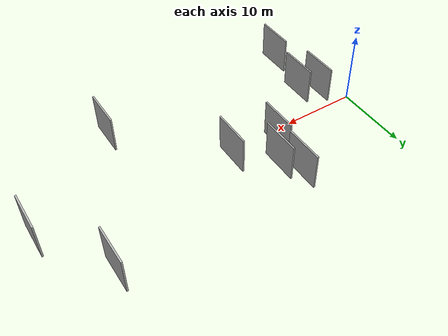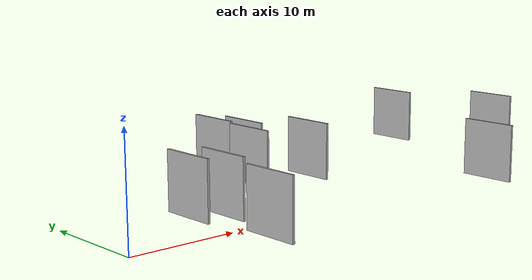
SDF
<sdf version="1.6">
 <world name="default">
  <scene>
   <sky><clouds><speed>12</speed></clouds></sky>
   <ambient>0.4 0.4 0.4 1</ambient>
   <background>0.7 0.7 0.7 1</background>
   <shadows>1</shadows>
  </scene>
  <gravity>0 0 -9.8066</gravity>
  <magnetic_field>6e-06 2.3e-05 -4.2e-05</magnetic_field>
  <physics default="0" name="default_physics" type="ode">
   <ode>
    <solver>
     <type>quick</type>
     <iters>10</iters>
     <sor>1.0</sor>
     <use_dynamic_moi_rescaling>0</use_dynamic_moi_rescaling>
    </solver>
    <constraints>
     <cfm>0</cfm>
     <erp>0.2</erp>
     <contact_max_correcting_vel>100</contact_max_correcting_vel>
     <contact_surface_layer>0.001</contact_surface_layer>
    </constraints>
   </ode>
   <max_step_size>0.004</max_step_size>
   <real_time_factor>1</real_time_factor>
   <real_time_update_rate>250</real_time_update_rate>
  </physics>
  <light name="sun" type="directional">
   <pose>0 0 10 0 0 0</pose>
   <diffuse>0.8 0.8 0.8 1</diffuse>
   <specular>0.2 0.2 0.2 1</specular>
   <attenuation>
    <range>1000</range>
    <constant>0.9</constant>
    <linear>0.01</linear>
    <quadratic>0.001</quadratic>
   </attenuation>
   <direction>-0.5 0.1 -0.9</direction>
  </light>
  <model name="grey_wall_1">
   <static>1</static>
   <pose>21.1453 3.1266 2.5 0.000000 0.000000 1.570796</pose>
   <link name="link">
    <pose>0 0 2.50 0 0 0</pose>
    <collision name="collision"><geometry><box><size>5.00 0.2 5.00</size></box></geometry></collision>
    <visual name="visual">
     <cast_shadows>0</cast_shadows>
     <geometry><box><size>5.00 0.2 5.00</size></box></geometry>
     <material>
      <script>
       <uri>model://HANNAS_wall/materials/scripts</uri>
       <uri>model://HANNAS_wall/materials/textures</uri>
       <name>vrc/HANNAS_wall</name>
      </script>
     </material>
    </visual>
   </link>
  </model>
  <model name="grey_wall_2">
   <static>1</static>
   <pose>4.6918 -1.2970 2.5 0.000000 0.000000 1.570796</pose>
   <link name="link">
    <pose>0 0 2.50 0 0 0</pose>
    <collision name="collision"><geometry><box><size>5.00 0.2 5.00</size></box></geometry></collision>
    <visual name="visual">
     <cast_shadows>0</cast_shadows>
     <geometry><box><size>5.00 0.2 5.00</size></box></geometry>
     <material>
      <script>
       <uri>model://HANNAS_wall/materials/scripts</uri>
       <uri>model://HANNAS_wall/materials/textures</uri>
       <name>vrc/HANNAS_wall</name>
      </script>
     </material>
    </visual>
   </link>
  </model>
  <model name="grey_wall_3">
   <static>1</static>
   <pose>17.1123 7.1400 2.5 0.000000 0.000000 1.570796</pose>
   <link name="link">
    <pose>0 0 2.50 0 0 0</pose>
    <collision name="collision"><geometry><box><size>5.00 0.2 5.00</size></box></geometry></collision>
    <visual name="visual">
     <cast_shadows>0</cast_shadows>
     <geometry><box><size>5.00 0.2 5.00</size></box></geometry>
     <material>
      <script>
       <uri>model://HANNAS_wall/materials/scripts</uri>
       <uri>model://HANNAS_wall/materials/textures</uri>
       <name>vrc/HANNAS_wall</name>
      </script>
     </material>
    </visual>
   </link>
  </model>
  <model name="grey_wall_4">
   <static>1</static>
   <pose>39.7909 10.1603 2.5 0.000000 0.000000 1.570796</pose>
   <link name="link">
    <pose>0 0 2.50 0 0 0</pose>
    <collision name="collision"><geometry><box><size>5.00 0.2 5.00</size></box></geometry></collision>
    <visual name="visual">
     <cast_shadows>0</cast_shadows>
     <geometry><box><size>5.00 0.2 5.00</size></box></geometry>
     <material>
      <script>
       <uri>model://HANNAS_wall/materials/scripts</uri>
       <uri>model://HANNAS_wall/materials/textures</uri>
       <name>vrc/HANNAS_wall</name>
      </script>
     </material>
    </visual>
   </link>
  </model>
  <model name="grey_wall_5">
   <static>1</static>
   <pose>15.7256 9.6621 2.5 0.000000 0.000000 1.570796</pose>
   <link name="link">
    <pose>0 0 2.50 0 0 0</pose>
    <collision name="collision"><geometry><box><size>5.00 0.2 5.00</size></box></geometry></collision>
    <visual name="visual">
     <cast_shadows>0</cast_shadows>
     <geometry><box><size>5.00 0.2 5.00</size></box></geometry>
     <material>
      <script>
       <uri>model://HANNAS_wall/materials/scripts</uri>
       <uri>model://HANNAS_wall/materials/textures</uri>
       <name>vrc/HANNAS_wall</name>
      </script>
     </material>
    </visual>
   </link>
  </model>
  <model name="grey_wall_6">
   <static>1</static>
   <pose>7.0964 -2.5203 2.5 0.000000 0.000000 1.570796</pose>
   <link name="link">
    <pose>0 0 2.50 0 0 0</pose>
    <collision name="collision"><geometry><box><size>5.00 0.2 5.00</size></box></geometry></collision>
    <visual name="visual">
     <cast_shadows>0</cast_shadows>
     <geometry><box><size>5.00 0.2 5.00</size></box></geometry>
     <material>
      <script>
       <uri>model://HANNAS_wall/materials/scripts</uri>
       <uri>model://HANNAS_wall/materials/textures</uri>
       <name>vrc/HANNAS_wall</name>
      </script>
     </material>
    </visual>
   </link>
  </model>
  <model name="grey_wall_7">
   <static>1</static>
   <pose>32.1541 -8.3179 2.5 0.000000 0.000000 1.570796</pose>
   <link name="link">
    <pose>0 0 2.50 0 0 0</pose>
    <collision name="collision"><geometry><box><size>5.00 0.2 5.00</size></box></geometry></collision>
    <visual name="visual">
     <cast_shadows>0</cast_shadows>
     <geometry><box><size>5.00 0.2 5.00</size></box></geometry>
     <material>
      <script>
       <uri>model://HANNAS_wall/materials/scripts</uri>
       <uri>model://HANNAS_wall/materials/textures</uri>
       <name>vrc/HANNAS_wall</name>
      </script>
     </material>
    </visual>
   </link>
  </model>
  <model name="grey_wall_8">
   <static>1</static>
   <pose>5.8063 -9.4470 2.5 0.000000 0.000000 1.570796</pose>
   <link name="link">
    <pose>0 0 2.50 0 0 0</pose>
    <collision name="collision"><geometry><box><size>5.00 0.2 5.00</size></box></geometry></collision>
    <visual name="visual">
     <cast_shadows>0</cast_shadows>
     <geometry><box><size>5.00 0.2 5.00</size></box></geometry>
     <material>
      <script>
       <uri>model://HANNAS_wall/materials/scripts</uri>
       <uri>model://HANNAS_wall/materials/textures</uri>
       <name>vrc/HANNAS_wall</name>
      </script>
     </material>
    </visual>
   </link>
  </model>
  <model name="grey_wall_9">
   <static>1</static>
   <pose>45.3623 1.6549 2.5 0.000000 0.000000 1.570796</pose>
   <link name="link">
    <pose>0 0 2.50 0 0 0</pose>
    <collision name="collision"><geometry><box><size>5.00 0.2 5.00</size></box></geometry></collision>
    <visual name="visual">
     <cast_shadows>0</cast_shadows>
     <geometry><box><size>5.00 0.2 5.00</size></box></geometry>
     <material>
      <script>
       <uri>model://HANNAS_wall/materials/scripts</uri>
       <uri>model://HANNAS_wall/materials/textures</uri>
       <name>vrc/HANNAS_wall</name>
      </script>
     </material>
    </visual>
   </link>
  </model>
  <model name="grey_wall_10">
   <static>1</static>
   <pose>15.1378 4.0470 2.5 0.000000 0.000000 1.570796</pose>
   <link name="link">
    <pose>0 0 2.50 0 0 0</pose>
    <collision name="collision"><geometry><box><size>5.00 0.2 5.00</size></box></geometry></collision>
    <visual name="visual">
     <cast_shadows>0</cast_shadows>
     <geometry><box><size>5.00 0.2 5.00</size></box></geometry>
     <material>
      <script>
       <uri>model://HANNAS_wall/materials/scripts</uri>
       <uri>model://HANNAS_wall/materials/textures</uri>
       <name>vrc/HANNAS_wall</name>
      </script>
     </material>
    </visual>
   </link>
  </model>
 </world>
</sdf>
